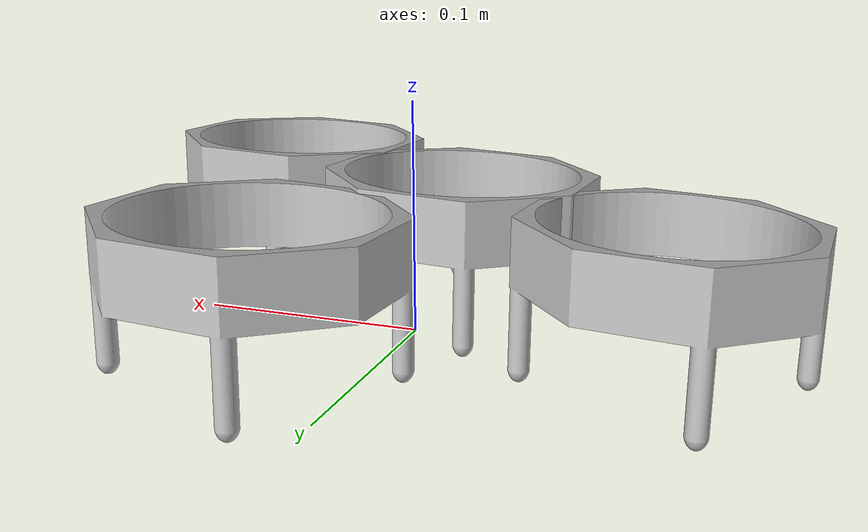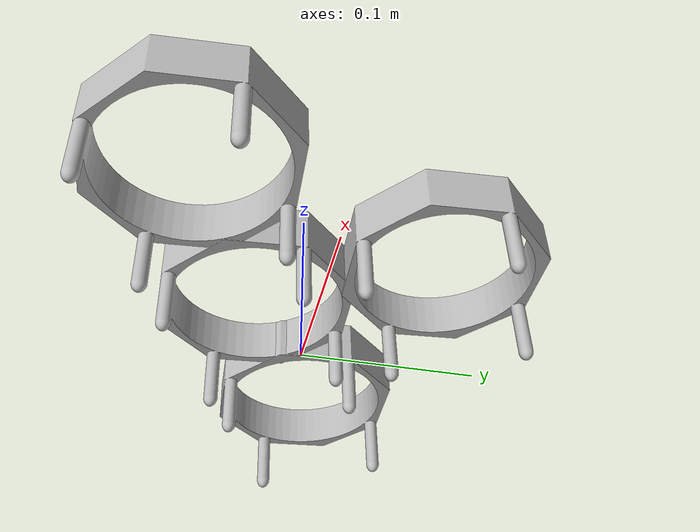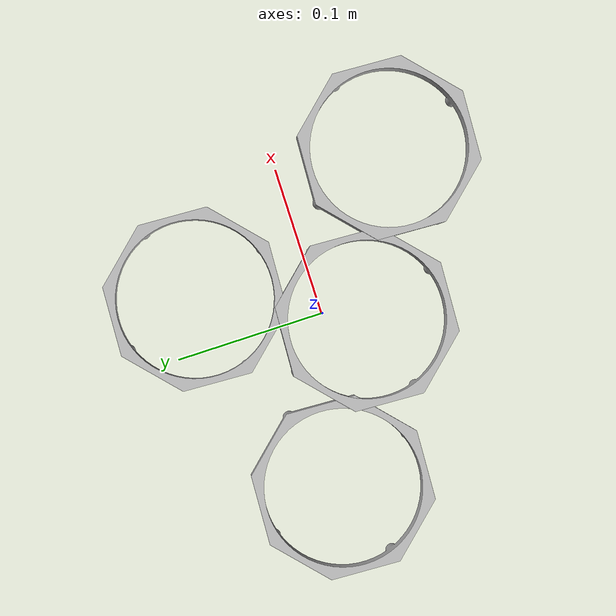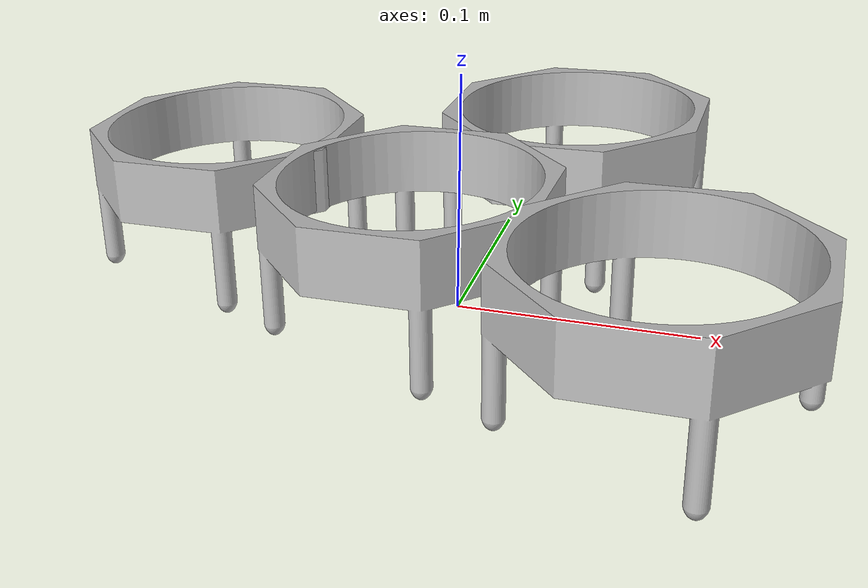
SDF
<?xml version='1.0'?>
<sdf version='1.6'>
  <model name='4square'>
      <link name='mountlink_1'>
        <collision name='coll'>
          <pose frame=''>0 0 0 0 -0 0</pose>
          <geometry>
            <mesh>
              <uri>model://mount/meshes/mount_collision.dae</uri>
            </mesh>
          </geometry>
        </collision>
	   <sensor name='contactSensor' type='contact'>
	   <plugin name="bumpSensor" filename="libbumpSensor.so"> </plugin>
	      <contact>
		    <collision>coll1</collision>
	      </contact>
	   </sensor>
        <inertial>
          <pose frame=''>0 0 0 0 -0 0</pose>
          <inertia>
          <ixx>0.00055873</ixx>
          <ixy>0.0000</ixy>
          <ixz>0.00000</ixz>
          <iyy>0.00055873</iyy>
          <iyz>0.00000/iyz></iyz>
          <izz>0.0010789</izz>
          </inertia>
          <mass>0.028</mass>
        </inertial>
        <visual name='mountvisual1'>
          <pose frame=''>0 0 0 0 -0 0</pose>
          <geometry>
            <mesh>
              <uri>model://mount/meshes/mount.dae</uri>
            </mesh>
          </geometry>
        </visual>
		<pose frame=''>-0.012243 -0.025526 0 0 -0 0</pose>
      </link>
      <link name='mountlink_2'>
        <collision name='coll2'>
          <pose frame=''>0 0 0 0 -0 0</pose>
          <geometry>
            <mesh>
              <uri>model://mount/meshes/mount_collision.dae</uri>
            </mesh>
          </geometry>
        </collision>
	   <sensor name='contactSensor' type='contact'>
	   <plugin name="bumpSensor" filename="libbumpSensor.so"> </plugin>
	      <contact>
		    <collision>coll</collision>
	      </contact>
	   </sensor>
        <inertial>
          <pose frame=''>0 0 0 0 -0 0</pose>
          <inertia>
          <ixx>0.00055873</ixx>
          <ixy>0.0000</ixy>
          <ixz>0.00000</ixz>
          <iyy>0.00055873</iyy>
          <iyz>0.00000/iyz></iyz>
          <izz>0.0010789</izz>
          </inertia>
          <mass>0.028</mass>
        </inertial>
        <visual name='mountvisual2'>
          <pose frame=''>0 0 0 0 -0 0</pose>
          <geometry>
            <mesh>
              <uri>model://mount/meshes/mount.dae</uri>
            </mesh>
          </geometry>
        </visual>
		 <pose frame=''>0.03438 0.076098 0.0025 0 -0 0</pose>
      </link>
      <link name='mountlink_3'>
        <collision name='coll3'>
          <pose frame=''>0 0 0 0 -0 0</pose>
          <geometry>
            <mesh>
              <uri>model://mount/meshes/mount_collision.dae</uri>
            </mesh>
          </geometry>
        </collision>
	   <sensor name='contactSensor' type='contact'>
	   <plugin name="bumpSensor" filename="libbumpSensor.so"> </plugin>
	      <contact>
		    <collision>coll3</collision>
	      </contact>
	   </sensor>
        <inertial>
          <pose frame=''>0 0 0 0 -0 0</pose>
          <inertia>
          <ixx>0.00055873</ixx>
          <ixy>0.0000</ixy>
          <ixz>0.00000</ixz>
          <iyy>0.00055873</iyy>
          <iyz>0.00000/iyz></iyz>
          <izz>0.0010789</izz>
          </inertia>
          <mass>0.028</mass>
        </inertial>
        <visual name='mountvisual3'>
          <pose frame=''>0 0 0 0 -0 0</pose>
          <geometry>
            <mesh>
              <uri>model://mount/meshes/mount.dae</uri>
            </mesh>
          </geometry>
        </visual>
		   <pose frame=''>-0.110867 0.022535 -0.002 0 -0 0</pose>
      </link>
      <link name='mountlink_4'>
        <collision name='coll4'>
          <pose frame=''>0 0 0 0 -0 0</pose>
          <geometry>
            <mesh>
              <uri>model://mount/meshes/mount_collision.dae</uri>
            </mesh>
          </geometry>
        </collision>
	   <sensor name='contactSensor' type='contact'>
	   <plugin name="bumpSensor" filename="libbumpSensor.so"> </plugin>
	      <contact>
		    <collision>coll4</collision>
	      </contact>
	   </sensor>
        <inertial>
          <pose frame=''>0 0 0 0 -0 0</pose>
          <inertia>
          <ixx>0.00055873</ixx>
          <ixy>0.0000</ixy>
          <ixz>0.00000</ixz>
          <iyy>0.00055873</iyy>
          <iyz>0.00000/iyz></iyz>
          <izz>0.0010789</izz>
          </inertia>
          <mass>0.028</mass>
        </inertial>
        <visual name='mountvisual4'>
          <pose frame=''>0 0 0 0 -0 0</pose>
          <geometry>
            <mesh>
              <uri>model://mount/meshes/mount.dae</uri>
            </mesh>
          </geometry>
        </visual>
			<pose frame=''>0.08873 -0.073107 0.002 0 -0 0</pose>
      </link>
    <joint name='mountlink_JOINT_3' type='fixed'>
      <parent>mountlink_1</parent>
      <child>mountlink_2</child>
      <pose frame=''>0 0 0 0 -0 0</pose>
      <physics>
        <ode>
          <limit>
            <cfm>0</cfm>
            <erp>0.2</erp>
          </limit>
          <suspension>
            <cfm>0</cfm>
            <erp>0.2</erp>
          </suspension>
        </ode>
      </physics>
    </joint>
    <joint name='mountlink_JOINT_2' type='fixed'>
      <parent>mountlink_1</parent>
      <child>mountlink_3</child>
      <pose frame=''>0 0 0 0 -0 0</pose>
      <physics>
        <ode>
          <limit>
            <cfm>0</cfm>
            <erp>0.2</erp>
          </limit>
          <suspension>
            <cfm>0</cfm>
            <erp>0.2</erp>
          </suspension>
        </ode>
      </physics>
    </joint>
    <joint name='mountlink_JOINT_0' type='fixed'>
      <parent>mountlink_1</parent>
      <child>mountlink_4</child>
      <pose frame=''>0 0 0 0 -0 0</pose>
      <physics>
        <ode>
          <limit>
            <cfm>0</cfm>
            <erp>0.2</erp>
          </limit>
          <suspension>
            <cfm>0</cfm>
            <erp>0.2</erp>
          </suspension>
        </ode>
      </physics>
    </joint>
    <static>0</static>
    <allow_auto_disable>1</allow_auto_disable>
  </model>
</sdf>
